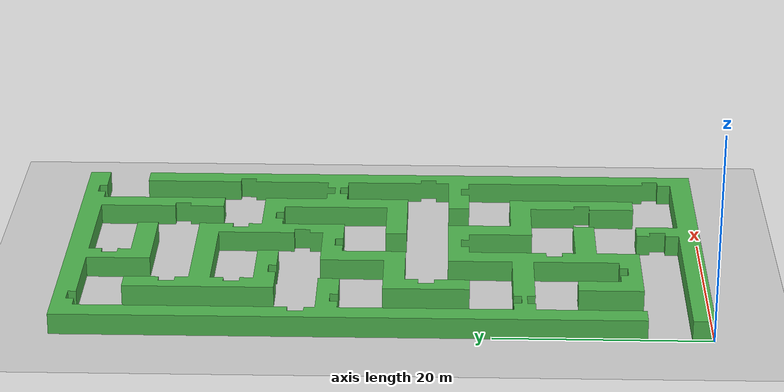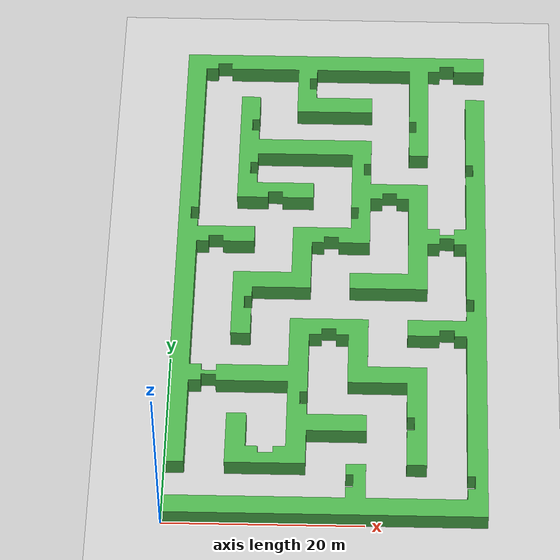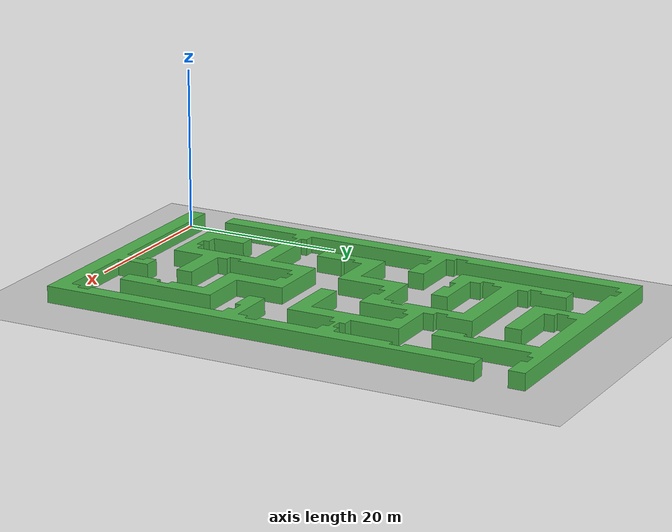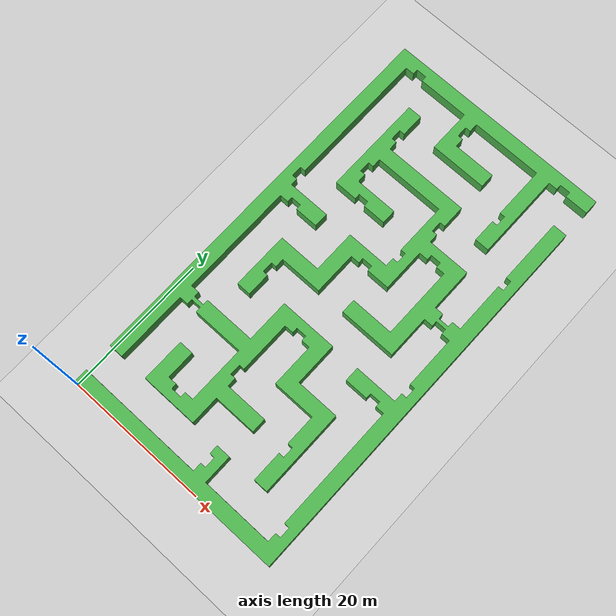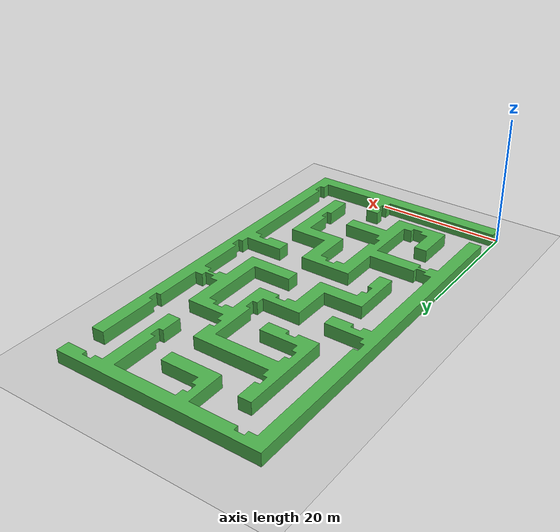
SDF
<?xml version="1.0"?>
<sdf version="1.6">
  <world name="maze_world">

    <!-- Physics -->
    <physics name="1ms" type="ignored">
      <max_step_size>0.001</max_step_size>
      <real_time_factor>1.0</real_time_factor>
    </physics>

    <!-- Core Plugins - Using Ignition naming convention -->
    <plugin filename="ignition-gazebo-contact-system" name="gz::sim::systems::Contact" />
    <plugin filename="ignition-gazebo-imu-system" name="gz::sim::systems::Imu" />
    <plugin filename="ignition-gazebo-physics-system" name="gz::sim::systems::Physics" />
    <plugin filename="ignition-gazebo-scene-broadcaster-system" name="gz::sim::systems::SceneBroadcaster" />
    <plugin filename="ignition-gazebo-sensors-system" name="gz::sim::systems::Sensors" />
    <plugin filename="ignition-gazebo-user-commands-system" name="gz::sim::systems::UserCommands" />

    <!-- Optional: Geographic coordinates for GPS simulation -->
    <spherical_coordinates>
      <surface_model>EARTH_WGS84</surface_model>
      <world_frame_orientation>ENU</world_frame_orientation>
      <latitude_deg>50.088384</latitude_deg>
      <longitude_deg>19.939128</longitude_deg>
      <elevation>0</elevation>
      <heading_deg>0</heading_deg>
    </spherical_coordinates>

    <!-- Lighting -->
    <light type="directional" name="sun">
      <cast_shadows>true</cast_shadows>
      <pose>0 0 10 0 0 0</pose>
      <diffuse>0.8 0.8 0.8 1</diffuse>
      <specular>0.2 0.2 0.2 1</specular>
      <attenuation>
        <range>1000</range>
        <constant>0.9</constant>
        <linear>0.01</linear>
        <quadratic>0.001</quadratic>
      </attenuation>
      <direction>-0.5 0.1 -0.9</direction>
    </light>

    <!-- Ground plane -->
    <model name="ground_plane">
      <static>true</static>
      <link name="link">
        <collision name="collision">
          <geometry>
            <plane>
              <normal>0 0 1</normal>
              <size>500 500</size>
            </plane>
          </geometry>
        </collision>
        <visual name="visual">
          <geometry>
            <plane>
              <normal>0 0 1</normal>
              <size>500 500</size>
            </plane>
          </geometry>
          <material>
            <ambient>0.8 0.8 0.8 1</ambient>
            <diffuse>0.8 0.8 0.8 1</diffuse>
            <specular>0.8 0.8 0.8 1</specular>
          </material>
        </visual>
      </link>
    </model>

    <!-- Include the maze model using model:// URI -->
    <include>
      <uri>model://maze</uri>
      <pose>0 0 0 0 0 0</pose>
    </include>

  </world>
</sdf>

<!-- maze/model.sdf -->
<sdf version="1.6">
  <model name="maze">
    <static>true</static>
    <link name="link">
      <collision name="collision">
        <geometry>
          <mesh>
            <uri>model://maze/meshes/maze.stl</uri>
            <scale>1.0 1.0 0.5</scale>
          </mesh>
        </geometry>
      </collision>
      <visual name="visual">
        <geometry>
          <mesh>
            <uri>model://maze/meshes/maze.stl</uri>
            <scale>1.0 1.0 0.5</scale>
          </mesh>
        </geometry>
        <material>
          <ambient>0.2 0.5 0.2 1</ambient>
          <diffuse>0.3 0.7 0.3 1</diffuse>
          <specular>0.1 0.1 0.1 1</specular>
        </material>
      </visual>
    </link>
  </model>
</sdf>
